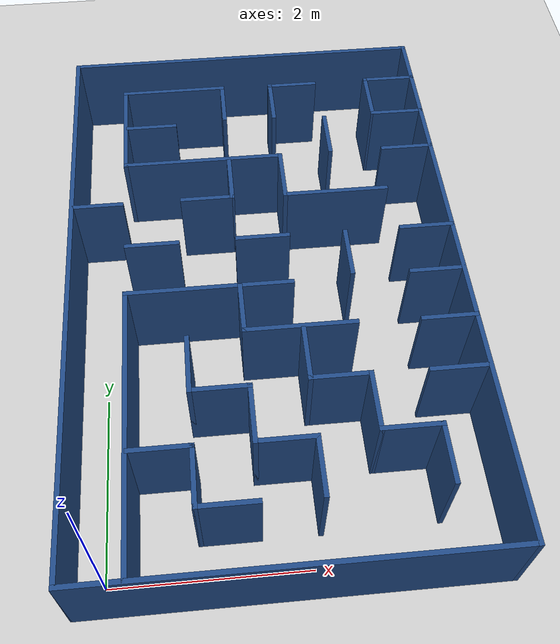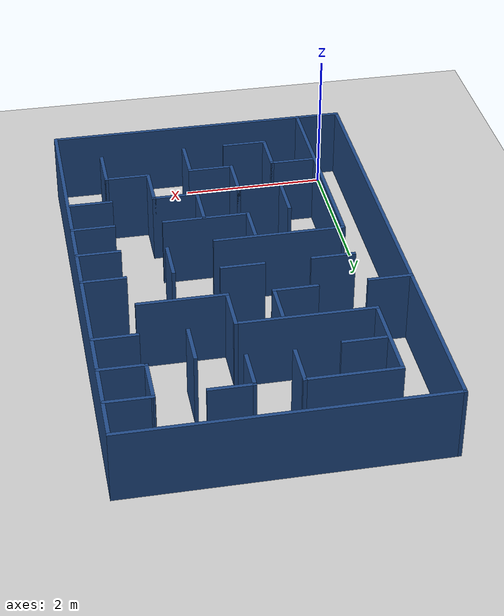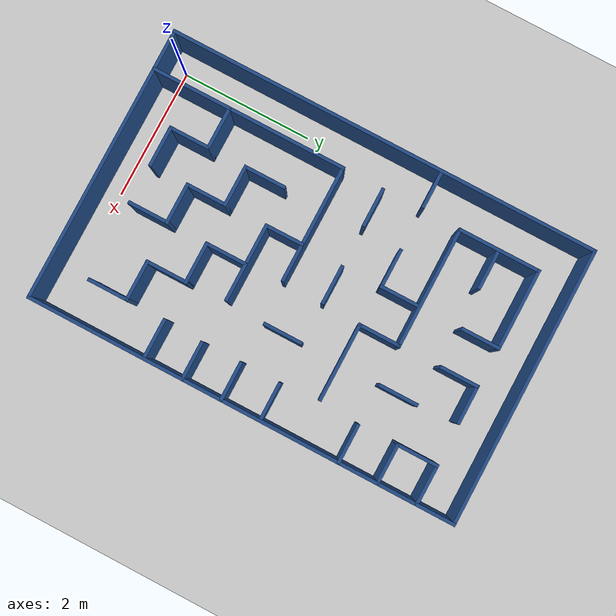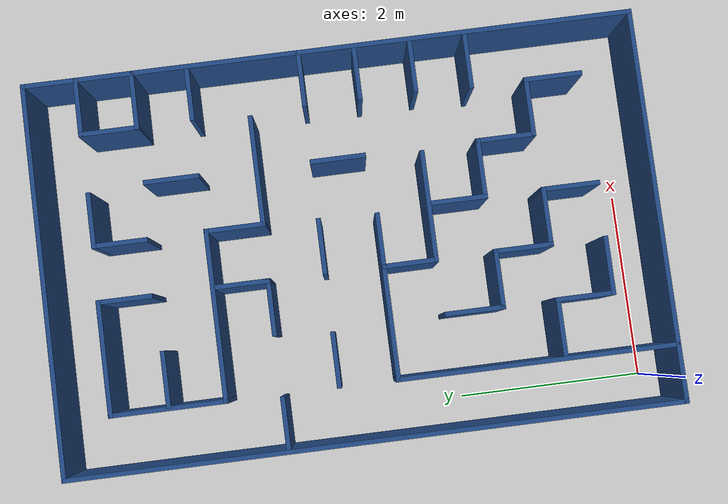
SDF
<sdf version="1.7">
 <world name="default">
  <light name="sun" type="directional">
   <pose>0 0 10 0 -0 0</pose>
   <diffuse>0.8 0.8 0.8 1</diffuse>
   <specular>0.2 0.2 0.2 1</specular>
   <attenuation>
    <range>1000</range>
    <constant>0.9</constant>
    <linear>0.01</linear>
    <quadratic>0.001</quadratic>
   </attenuation>
   <direction>-0.5 0.1 -0.9</direction>
   <spot><inner_angle>0</inner_angle><outer_angle>0</outer_angle><falloff>0</falloff></spot>
  </light>
  <model name="ground_plane">
   <static>1</static>
   <link name="link">
    <collision name="collision">
     <geometry><plane><normal>0 0 1</normal><size>100 100</size></plane></geometry>
     <surface>
      <contact><collide_bitmask>65535</collide_bitmask></contact>
      <friction><ode><mu>100</mu><mu2>50</mu2></ode></friction>
     </surface>
    </collision>
    <visual name="visual">
     <cast_shadows>0</cast_shadows>
     <geometry><plane><normal>0 0 1</normal><size>100 100</size></plane></geometry>
     <material>
      <script><uri>file://media/materials/scripts/gazebo.material</uri><name>Gazebo/Grey</name></script>
     </material>
    </visual>
   </link>
  </model>
  <gravity>0 0 -9.8</gravity>
  <magnetic_field>6e-06 2.3e-05 -4.2e-05</magnetic_field>
  <atmosphere type="adiabatic"/>
  <physics type="ode">
   <max_step_size>0.001</max_step_size>
   <real_time_factor>1</real_time_factor>
   <real_time_update_rate>1000</real_time_update_rate>
  </physics>
  <scene><ambient>0.4 0.4 0.4 1</ambient><background>0.7 0.7 0.7 1</background><shadows>1</shadows></scene>
  <spherical_coordinates>
   <surface_model>EARTH_WGS84</surface_model>
   <latitude_deg>0</latitude_deg>
   <longitude_deg>0</longitude_deg>
   <elevation>0</elevation>
   <heading_deg>0</heading_deg>
  </spherical_coordinates>
  <model name="labyrinth_60cm">
   <pose>1.79106 3.03131 0 0 -0 0</pose>
   <link name="Wall_0">
    <collision name="Wall_0_Collision">
     <geometry><box><size>6.6 0.05 1</size></box></geometry>
     <pose>0 0 0.5 0 -0 0</pose>
    </collision>
    <visual name="Wall_0_Visual">
     <pose>0 0 0.5 0 -0 0</pose>
     <geometry><box><size>6.6 0.05 1</size></box></geometry>
     <material>
      <script><uri>file://media/materials/scripts/gazebo.material</uri><name>Gazebo/Grey</name></script>
      <ambient>0.12549 0.290196 0.529412 1</ambient>
     </material>
     <meta><layer>0</layer></meta>
    </visual>
    <pose>-2.09536 1e-06 0 0 -0 1.57084</pose>
   </link>
   <link name="Wall_11">
    <collision name="Wall_11_Collision">
     <geometry><box><size>6.6 0.05 1</size></box></geometry>
     <pose>0 0 0.5 0 -0 0</pose>
    </collision>
    <visual name="Wall_11_Visual">
     <pose>0 0 0.5 0 -0 0</pose>
     <geometry><box><size>6.6 0.05 1</size></box></geometry>
     <material>
      <script><uri>file://media/materials/scripts/gazebo.material</uri><name>Gazebo/Grey</name></script>
      <ambient>0.12549 0.290196 0.529412 1</ambient>
     </material>
     <meta><layer>0</layer></meta>
    </visual>
    <pose>2.0955 -1e-06 0 0 -0 -1.5708</pose>
   </link>
   <link name="Wall_13">
    <collision name="Wall_13_Collision">
     <geometry><box><size>3 0.05 1</size></box></geometry>
     <pose>0 0 0.5 0 -0 0</pose>
    </collision>
    <visual name="Wall_13_Visual">
     <pose>0 0 0.5 0 -0 0</pose>
     <geometry><box><size>3 0.05 1</size></box></geometry>
     <material>
      <script><uri>file://media/materials/scripts/gazebo.material</uri><name>Gazebo/Grey</name></script>
      <ambient>0.12549 0.290196 0.529412 1</ambient>
     </material>
     <meta><layer>0</layer></meta>
    </visual>
    <pose>-1.4955 -1.788 0 0 -0 1.5708</pose>
   </link>
   <link name="Wall_15">
    <collision name="Wall_15_Collision">
     <geometry><box><size>1.8 0.05 1</size></box></geometry>
     <pose>0 0 0.5 0 -0 0</pose>
    </collision>
    <visual name="Wall_15_Visual">
     <pose>0 0 0.5 0 -0 0</pose>
     <geometry><box><size>1.8 0.05 1</size></box></geometry>
     <material>
      <script><uri>file://media/materials/scripts/gazebo.material</uri><name>Gazebo/Grey</name></script>
      <ambient>0.12549 0.290196 0.529412 1</ambient>
     </material>
     <meta><layer>0</layer></meta>
    </visual>
    <pose>-0.6205 -0.313001 0 0 -0 0</pose>
   </link>
   <link name="Wall_17">
    <collision name="Wall_17_Collision">
     <geometry><box><size>0.6 0.05 1</size></box></geometry>
     <pose>0 0 0.5 0 -0 0</pose>
    </collision>
    <visual name="Wall_17_Visual">
     <pose>0 0 0.5 0 -0 0</pose>
     <geometry><box><size>0.6 0.05 1</size></box></geometry>
     <material>
      <script><uri>file://media/materials/scripts/gazebo.material</uri><name>Gazebo/Grey</name></script>
      <ambient>0.12549 0.290196 0.529412 1</ambient>
     </material>
     <meta><layer>0</layer></meta>
    </visual>
    <pose>-0.296 -0.594831 0 0 -0 -1.56534</pose>
   </link>
   <link name="Wall_19">
    <collision name="Wall_19_Collision">
     <geometry><box><size>1.2 0.05 1</size></box></geometry>
     <pose>0 0 0.5 0 -0 0</pose>
    </collision>
    <visual name="Wall_19_Visual">
     <pose>0 0 0.5 0 -0 0</pose>
     <geometry><box><size>1.2 0.05 1</size></box></geometry>
     <material>
      <script><uri>file://media/materials/scripts/gazebo.material</uri><name>Gazebo/Grey</name></script>
      <ambient>0.12549 0.290196 0.529412 1</ambient>
     </material>
     <meta><layer>0</layer></meta>
    </visual>
    <pose>0.2805 -0.870001 0 0 -0 0</pose>
   </link>
   <link name="Wall_2">
    <collision name="Wall_2_Collision">
     <geometry><box><size>4.241 0.05 1</size></box></geometry>
     <pose>0 0 0.5 0 -0 0</pose>
    </collision>
    <visual name="Wall_2_Visual">
     <pose>0 0 0.5 0 -0 0</pose>
     <geometry><box><size>4.241 0.05 1</size></box></geometry>
     <material>
      <script><uri>file://media/materials/scripts/gazebo.material</uri><name>Gazebo/Grey</name></script>
      <ambient>0.12549 0.290196 0.529412 1</ambient>
     </material>
     <meta><layer>0</layer></meta>
    </visual>
    <pose>0 3.275 0 0 -0 0</pose>
   </link>
   <link name="Wall_21">
    <collision name="Wall_21_Collision">
     <geometry><box><size>0.651929 0.05 1</size></box></geometry>
     <pose>0 0 0.5 0 -0 0</pose>
    </collision>
    <visual name="Wall_21_Visual">
     <pose>0 0 0.5 0 -0 0</pose>
     <geometry><box><size>0.651929 0.05 1</size></box></geometry>
     <material>
      <script><uri>file://media/materials/scripts/gazebo.material</uri><name>Gazebo/Grey</name></script>
      <ambient>0.12549 0.290196 0.529412 1</ambient>
     </material>
     <meta><layer>0</layer></meta>
    </visual>
    <pose>0.3075 -1.1745 0 0 -0 -1.5708</pose>
   </link>
   <link name="Wall_22">
    <collision name="Wall_22_Collision">
     <geometry><box><size>0.65 0.05 1</size></box></geometry>
     <pose>0 0 0.5 0 -0 0</pose>
    </collision>
    <visual name="Wall_22_Visual">
     <pose>0 0 0.5 0 -0 0</pose>
     <geometry><box><size>0.65 0.05 1</size></box></geometry>
     <material>
      <script><uri>file://media/materials/scripts/gazebo.material</uri><name>Gazebo/Grey</name></script>
      <ambient>0.12549 0.290196 0.529412 1</ambient>
     </material>
     <meta><layer>0</layer></meta>
    </visual>
    <pose>0.6075 -1.475 0 0 -0 0</pose>
   </link>
   <link name="Wall_23">
    <collision name="Wall_23_Collision">
     <geometry><box><size>0.65 0.05 1</size></box></geometry>
     <pose>0 0 0.5 0 -0 0</pose>
    </collision>
    <visual name="Wall_23_Visual">
     <pose>0 0 0.5 0 -0 0</pose>
     <geometry><box><size>0.65 0.05 1</size></box></geometry>
     <material>
      <script><uri>file://media/materials/scripts/gazebo.material</uri><name>Gazebo/Grey</name></script>
      <ambient>0.12549 0.290196 0.529412 1</ambient>
     </material>
     <meta><layer>0</layer></meta>
    </visual>
    <pose>0.9075 -1.775 0 0 -0 -1.5708</pose>
   </link>
   <link name="Wall_24">
    <collision name="Wall_24_Collision">
     <geometry><box><size>0.64 0.05 1</size></box></geometry>
     <pose>0 0 0.5 0 -0 0</pose>
    </collision>
    <visual name="Wall_24_Visual">
     <pose>0 0 0.5 0 -0 0</pose>
     <geometry><box><size>0.64 0.05 1</size></box></geometry>
     <material>
      <script><uri>file://media/materials/scripts/gazebo.material</uri><name>Gazebo/Grey</name></script>
      <ambient>0.12549 0.290196 0.529412 1</ambient>
     </material>
     <meta><layer>0</layer></meta>
    </visual>
    <pose>1.2025 -2.075 0 0 -0 0</pose>
   </link>
   <link name="Wall_25">
    <collision name="Wall_25_Collision">
     <geometry><box><size>0.63 0.05 1</size></box></geometry>
     <pose>0 0 0.5 0 -0 0</pose>
    </collision>
    <visual name="Wall_25_Visual">
     <pose>0 0 0.5 0 -0 0</pose>
     <geometry><box><size>0.63 0.05 1</size></box></geometry>
     <material>
      <script><uri>file://media/materials/scripts/gazebo.material</uri><name>Gazebo/Grey</name></script>
      <ambient>0.12549 0.290196 0.529412 1</ambient>
     </material>
     <meta><layer>0</layer></meta>
    </visual>
    <pose>1.4975 -2.365 0 0 -0 -1.5708</pose>
   </link>
   <link name="Wall_28">
    <collision name="Wall_28_Collision">
     <geometry><box><size>0.645 0.05 1</size></box></geometry>
     <pose>0 0 0.5 0 -0 0</pose>
    </collision>
    <visual name="Wall_28_Visual">
     <pose>0 0 0.5 0 -0 0</pose>
     <geometry><box><size>0.645 0.05 1</size></box></geometry>
     <material>
      <script><uri>file://media/materials/scripts/gazebo.material</uri><name>Gazebo/Grey</name></script>
      <ambient>0.12549 0.290196 0.529412 1</ambient>
     </material>
     <meta><layer>0</layer></meta>
    </visual>
    <pose>-0.878499 -1.2085 0 0 -0 -1.5708</pose>
   </link>
   <link name="Wall_29">
    <collision name="Wall_29_Collision">
     <geometry><box><size>0.642777 0.05 1</size></box></geometry>
     <pose>0 0 0.5 0 -0 0</pose>
    </collision>
    <visual name="Wall_29_Visual">
     <pose>0 0 0.5 0 -0 0</pose>
     <geometry><box><size>0.642777 0.05 1</size></box></geometry>
     <material>
      <script><uri>file://media/materials/scripts/gazebo.material</uri><name>Gazebo/Grey</name></script>
      <ambient>0.12549 0.290196 0.529412 1</ambient>
     </material>
     <meta><layer>0</layer></meta>
    </visual>
    <pose>-0.582 -1.506 0 0 -0 0</pose>
   </link>
   <link name="Wall_30">
    <collision name="Wall_30_Collision">
     <geometry><box><size>0.64 0.05 1</size></box></geometry>
     <pose>0 0 0.5 0 -0 0</pose>
    </collision>
    <visual name="Wall_30_Visual">
     <pose>0 0 0.5 0 -0 0</pose>
     <geometry><box><size>0.64 0.05 1</size></box></geometry>
     <material>
      <script><uri>file://media/materials/scripts/gazebo.material</uri><name>Gazebo/Grey</name></script>
      <ambient>0.12549 0.290196 0.529412 1</ambient>
     </material>
     <meta><layer>0</layer></meta>
    </visual>
    <pose>-0.2855 -1.801 0 0 -0 -1.5708</pose>
   </link>
   <link name="Wall_31">
    <collision name="Wall_31_Collision">
     <geometry><box><size>0.64 0.05 1</size></box></geometry>
     <pose>0 0 0.5 0 -0 0</pose>
    </collision>
    <visual name="Wall_31_Visual">
     <pose>0 0 0.5 0 -0 0</pose>
     <geometry><box><size>0.64 0.05 1</size></box></geometry>
     <material>
      <script><uri>file://media/materials/scripts/gazebo.material</uri><name>Gazebo/Grey</name></script>
      <ambient>0.12549 0.290196 0.529412 1</ambient>
     </material>
     <meta><layer>0</layer></meta>
    </visual>
    <pose>0.0095 -2.096 0 0 -0 0</pose>
   </link>
   <link name="Wall_32">
    <collision name="Wall_32_Collision">
     <geometry><box><size>0.63 0.05 1</size></box></geometry>
     <pose>0 0 0.5 0 -0 0</pose>
    </collision>
    <visual name="Wall_32_Visual">
     <pose>0 0 0.5 0 -0 0</pose>
     <geometry><box><size>0.63 0.05 1</size></box></geometry>
     <material>
      <script><uri>file://media/materials/scripts/gazebo.material</uri><name>Gazebo/Grey</name></script>
      <ambient>0.12549 0.290196 0.529412 1</ambient>
     </material>
     <meta><layer>0</layer></meta>
    </visual>
    <pose>0.3045 -2.386 0 0 -0 -1.5708</pose>
   </link>
   <link name="Wall_34">
    <collision name="Wall_34_Collision">
     <geometry><box><size>0.65 0.05 1</size></box></geometry>
     <pose>0 0 0.5 0 -0 0</pose>
    </collision>
    <visual name="Wall_34_Visual">
     <pose>0 0 0.5 0 -0 0</pose>
     <geometry><box><size>0.65 0.05 1</size></box></geometry>
     <material>
      <script><uri>file://media/materials/scripts/gazebo.material</uri><name>Gazebo/Grey</name></script>
      <ambient>0.12549 0.290196 0.529412 1</ambient>
     </material>
     <meta><layer>0</layer></meta>
    </visual>
    <pose>-1.1745 -2.087 0 0 -0 0</pose>
   </link>
   <link name="Wall_35">
    <collision name="Wall_35_Collision">
     <geometry><box><size>0.64 0.05 1</size></box></geometry>
     <pose>0 0 0.5 0 -0 0</pose>
    </collision>
    <visual name="Wall_35_Visual">
     <pose>0 0 0.5 0 -0 0</pose>
     <geometry><box><size>0.64 0.05 1</size></box></geometry>
     <material>
      <script><uri>file://media/materials/scripts/gazebo.material</uri><name>Gazebo/Grey</name></script>
      <ambient>0.12549 0.290196 0.529412 1</ambient>
     </material>
     <meta><layer>0</layer></meta>
    </visual>
    <pose>-0.8745 -2.382 0 0 -0 -1.5708</pose>
   </link>
   <link name="Wall_36">
    <collision name="Wall_36_Collision">
     <geometry><box><size>0.63 0.05 1</size></box></geometry>
     <pose>0 0 0.5 0 -0 0</pose>
    </collision>
    <visual name="Wall_36_Visual">
     <pose>0 0 0.5 0 -0 0</pose>
     <geometry><box><size>0.63 0.05 1</size></box></geometry>
     <material>
      <script><uri>file://media/materials/scripts/gazebo.material</uri><name>Gazebo/Grey</name></script>
      <ambient>0.12549 0.290196 0.529412 1</ambient>
     </material>
     <meta><layer>0</layer></meta>
    </visual>
    <pose>-0.5845 -2.677 0 0 -0 0</pose>
   </link>
   <link name="Wall_38">
    <collision name="Wall_38_Collision">
     <geometry><box><size>0.6 0.05 1</size></box></geometry>
     <pose>0 0 0.5 0 -0 0</pose>
    </collision>
    <visual name="Wall_38_Visual">
     <pose>0 0 0.5 0 -0 0</pose>
     <geometry><box><size>0.6 0.05 1</size></box></geometry>
     <material>
      <script><uri>file://media/materials/scripts/gazebo.material</uri><name>Gazebo/Grey</name></script>
      <ambient>0.12549 0.290196 0.529412 1</ambient>
     </material>
     <meta><layer>0</layer></meta>
    </visual>
    <pose>1.7795 -1.487 0 0 -0 0</pose>
   </link>
   <link name="Wall_4">
    <collision name="Wall_4_Collision">
     <geometry><box><size>4.2 0.05 1</size></box></geometry>
     <pose>0 0 0.5 0 -0 0</pose>
    </collision>
    <visual name="Wall_4_Visual">
     <pose>0 0 0.5 0 -0 0</pose>
     <geometry><box><size>4.2 0.05 1</size></box></geometry>
     <material>
      <script><uri>file://media/materials/scripts/gazebo.material</uri><name>Gazebo/Grey</name></script>
      <ambient>0.12549 0.290196 0.529412 1</ambient>
     </material>
     <meta><layer>0</layer></meta>
    </visual>
    <pose>-0.020222 -3.275 0 0 -0 0</pose>
   </link>
   <link name="Wall_40">
    <collision name="Wall_40_Collision">
     <geometry><box><size>0.6 0.05 1</size></box></geometry>
     <pose>0 0 0.5 0 -0 0</pose>
    </collision>
    <visual name="Wall_40_Visual">
     <pose>0 0 0.5 0 -0 0</pose>
     <geometry><box><size>0.6 0.05 1</size></box></geometry>
     <material>
      <script><uri>file://media/materials/scripts/gazebo.material</uri><name>Gazebo/Grey</name></script>
      <ambient>0.12549 0.290196 0.529412 1</ambient>
     </material>
     <meta><layer>0</layer></meta>
    </visual>
    <pose>1.81467 -0.890897 0 0 -0 0</pose>
   </link>
   <link name="Wall_42">
    <collision name="Wall_42_Collision">
     <geometry><box><size>0.6 0.05 1</size></box></geometry>
     <pose>0 0 0.5 0 -0 0</pose>
    </collision>
    <visual name="Wall_42_Visual">
     <pose>0 0 0.5 0 -0 0</pose>
     <geometry><box><size>0.6 0.05 1</size></box></geometry>
     <material>
      <script><uri>file://media/materials/scripts/gazebo.material</uri><name>Gazebo/Grey</name></script>
      <ambient>0.12549 0.290196 0.529412 1</ambient>
     </material>
     <meta><layer>0</layer></meta>
    </visual>
    <pose>1.80809 -0.289897 0 0 -0 0</pose>
   </link>
   <link name="Wall_44">
    <collision name="Wall_44_Collision">
     <geometry><box><size>0.6 0.05 1</size></box></geometry>
     <pose>0 0 0.5 0 -0 0</pose>
    </collision>
    <visual name="Wall_44_Visual">
     <pose>0 0 0.5 0 -0 0</pose>
     <geometry><box><size>0.6 0.05 1</size></box></geometry>
     <material>
      <script><uri>file://media/materials/scripts/gazebo.material</uri><name>Gazebo/Grey</name></script>
      <ambient>0.12549 0.290196 0.529412 1</ambient>
     </material>
     <meta><layer>0</layer></meta>
    </visual>
    <pose>1.80814 0.308896 0 0 -0 0</pose>
   </link>
   <link name="Wall_46">
    <collision name="Wall_46_Collision">
     <geometry><box><size>0.6 0.05 1</size></box></geometry>
     <pose>0 0 0.5 0 -0 0</pose>
    </collision>
    <visual name="Wall_46_Visual">
     <pose>0 0 0.5 0 -0 0</pose>
     <geometry><box><size>0.6 0.05 1</size></box></geometry>
     <material>
      <script><uri>file://media/materials/scripts/gazebo.material</uri><name>Gazebo/Grey</name></script>
      <ambient>0.12549 0.290196 0.529412 1</ambient>
     </material>
     <meta><layer>0</layer></meta>
    </visual>
    <pose>0.9055 0.026999 0 0 -0 1.5708</pose>
   </link>
   <link name="Wall_48">
    <collision name="Wall_48_Collision">
     <geometry><box><size>0.6 0.05 1</size></box></geometry>
     <pose>0 0 0.5 0 -0 0</pose>
    </collision>
    <visual name="Wall_48_Visual">
     <pose>0 0 0.5 0 -0 0</pose>
     <geometry><box><size>0.6 0.05 1</size></box></geometry>
     <material>
      <script><uri>file://media/materials/scripts/gazebo.material</uri><name>Gazebo/Grey</name></script>
      <ambient>0.12549 0.290196 0.529412 1</ambient>
     </material>
     <meta><layer>0</layer></meta>
    </visual>
    <pose>-1.2075 0.311999 0 0 -0 0</pose>
   </link>
   <link name="Wall_50">
    <collision name="Wall_50_Collision">
     <geometry><box><size>0.6 0.05 1</size></box></geometry>
     <pose>0 0 0.5 0 -0 0</pose>
    </collision>
    <visual name="Wall_50_Visual">
     <pose>0 0 0.5 0 -0 0</pose>
     <geometry><box><size>0.6 0.05 1</size></box></geometry>
     <material>
      <script><uri>file://media/materials/scripts/gazebo.material</uri><name>Gazebo/Grey</name></script>
      <ambient>0.12549 0.290196 0.529412 1</ambient>
     </material>
     <meta><layer>0</layer></meta>
    </visual>
    <pose>-0.001655 0.313999 0 0 -0 0</pose>
   </link>
   <link name="Wall_52">
    <collision name="Wall_52_Collision">
     <geometry><box><size>0.6 0.05 1</size></box></geometry>
     <pose>0 0 0.5 0 -0 0</pose>
    </collision>
    <visual name="Wall_52_Visual">
     <pose>0 0 0.5 0 -0 0</pose>
     <geometry><box><size>0.6 0.05 1</size></box></geometry>
     <material>
      <script><uri>file://media/materials/scripts/gazebo.material</uri><name>Gazebo/Grey</name></script>
      <ambient>0.12549 0.290196 0.529412 1</ambient>
     </material>
     <meta><layer>0</layer></meta>
    </visual>
    <pose>-1.8175 0.915999 0 0 -0 0</pose>
   </link>
   <link name="Wall_54">
    <collision name="Wall_54_Collision">
     <geometry><box><size>1.19662 0.05 1</size></box></geometry>
     <pose>0 0 0.5 0 -0 0</pose>
    </collision>
    <visual name="Wall_54_Visual">
     <pose>0 0 0.5 0 -0 0</pose>
     <geometry><box><size>1.19662 0.05 1</size></box></geometry>
     <material>
      <script><uri>file://media/materials/scripts/gazebo.material</uri><name>Gazebo/Grey</name></script>
      <ambient>0.12549 0.290196 0.529412 1</ambient>
     </material>
     <meta><layer>0</layer></meta>
    </visual>
    <pose>0.883 0.899999 0 0 -0 -3.14159</pose>
   </link>
   <link name="Wall_56">
    <collision name="Wall_56_Collision">
     <geometry><box><size>0.658113 0.05 1</size></box></geometry>
     <pose>0 0 0.5 0 -0 0</pose>
    </collision>
    <visual name="Wall_56_Visual">
     <pose>0 0 0.5 0 -0 0</pose>
     <geometry><box><size>0.658113 0.05 1</size></box></geometry>
     <material>
      <script><uri>file://media/materials/scripts/gazebo.material</uri><name>Gazebo/Grey</name></script>
      <ambient>0.12549 0.290196 0.529412 1</ambient>
     </material>
     <meta><layer>0</layer></meta>
    </visual>
    <pose>0.3095 1.204 0 0 -0 1.5708</pose>
   </link>
   <link name="Wall_58">
    <collision name="Wall_58_Collision">
     <geometry><box><size>1.85 0.05 1</size></box></geometry>
     <pose>0 0 0.5 0 -0 0</pose>
    </collision>
    <visual name="Wall_58_Visual">
     <pose>0 0 0.5 0 -0 0</pose>
     <geometry><box><size>1.85 0.05 1</size></box></geometry>
     <material>
      <script><uri>file://media/materials/scripts/gazebo.material</uri><name>Gazebo/Grey</name></script>
      <ambient>0.12549 0.290196 0.529412 1</ambient>
     </material>
     <meta><layer>0</layer></meta>
    </visual>
    <pose>-0.5905 1.508 0 0 -0 3.14159</pose>
   </link>
   <link name="Wall_60">
    <collision name="Wall_60_Collision">
     <geometry><box><size>0.610168 0.05 1</size></box></geometry>
     <pose>0 0 0.5 0 -0 0</pose>
    </collision>
    <visual name="Wall_60_Visual">
     <pose>0 0 0.5 0 -0 0</pose>
     <geometry><box><size>0.610168 0.05 1</size></box></geometry>
     <material>
      <script><uri>file://media/materials/scripts/gazebo.material</uri><name>Gazebo/Grey</name></script>
      <ambient>0.12549 0.290196 0.529412 1</ambient>
     </material>
     <meta><layer>0</layer></meta>
    </visual>
    <pose>-0.573089 0.919958 0 0 -0 0.000222</pose>
   </link>
   <link name="Wall_62">
    <collision name="Wall_62_Collision">
     <geometry><box><size>0.6 0.05 1</size></box></geometry>
     <pose>0 0 0.5 0 -0 0</pose>
    </collision>
    <visual name="Wall_62_Visual">
     <pose>0 0 0.5 0 -0 0</pose>
     <geometry><box><size>0.6 0.05 1</size></box></geometry>
     <material>
      <script><uri>file://media/materials/scripts/gazebo.material</uri><name>Gazebo/Grey</name></script>
      <ambient>0.12549 0.290196 0.529412 1</ambient>
     </material>
     <meta><layer>0</layer></meta>
    </visual>
    <pose>-0.293004 1.19502 0 0 -0 1.5708</pose>
   </link>
   <link name="Wall_64">
    <collision name="Wall_64_Collision">
     <geometry><box><size>1.264 0.05 1</size></box></geometry>
     <pose>0 0 0.5 0 -0 0</pose>
    </collision>
    <visual name="Wall_64_Visual">
     <pose>0 0 0.5 0 -0 0</pose>
     <geometry><box><size>1.264 0.05 1</size></box></geometry>
     <material>
      <script><uri>file://media/materials/scripts/gazebo.material</uri><name>Gazebo/Grey</name></script>
      <ambient>0.12549 0.290196 0.529412 1</ambient>
     </material>
     <meta><layer>0</layer></meta>
    </visual>
    <pose>-1.4905 2.115 0 0 -0 1.5708</pose>
   </link>
   <link name="Wall_65">
    <collision name="Wall_65_Collision">
     <geometry><box><size>1.2433 0.05 1</size></box></geometry>
     <pose>0 0 0.5 0 -0 0</pose>
    </collision>
    <visual name="Wall_65_Visual">
     <pose>0 0 0.5 0 -0 0</pose>
     <geometry><box><size>1.2433 0.05 1</size></box></geometry>
     <material>
      <script><uri>file://media/materials/scripts/gazebo.material</uri><name>Gazebo/Grey</name></script>
      <ambient>0.12549 0.290196 0.529412 1</ambient>
     </material>
     <meta><layer>0</layer></meta>
    </visual>
    <pose>-0.894 2.722 0 0 -0 0</pose>
   </link>
   <link name="Wall_66">
    <collision name="Wall_66_Collision">
     <geometry><box><size>0.6 0.05 1</size></box></geometry>
     <pose>0 0 0.5 0 -0 0</pose>
    </collision>
    <visual name="Wall_66_Visual">
     <pose>0 0 0.5 0 -0 0</pose>
     <geometry><box><size>0.6 0.05 1</size></box></geometry>
     <material>
      <script><uri>file://media/materials/scripts/gazebo.material</uri><name>Gazebo/Grey</name></script>
      <ambient>0.12549 0.290196 0.529412 1</ambient>
     </material>
     <meta><layer>0</layer></meta>
    </visual>
    <pose>-0.2975 2.447 0 0 -0 -1.5708</pose>
   </link>
   <link name="Wall_68">
    <collision name="Wall_68_Collision">
     <geometry><box><size>0.6 0.05 1</size></box></geometry>
     <pose>0 0 0.5 0 -0 0</pose>
    </collision>
    <visual name="Wall_68_Visual">
     <pose>0 0 0.5 0 -0 0</pose>
     <geometry><box><size>0.6 0.05 1</size></box></geometry>
     <material>
      <script><uri>file://media/materials/scripts/gazebo.material</uri><name>Gazebo/Grey</name></script>
      <ambient>0.12549 0.290196 0.529412 1</ambient>
     </material>
     <meta><layer>0</layer></meta>
    </visual>
    <pose>-1.1855 2.109 0 0 -0 3.14159</pose>
   </link>
   <link name="Wall_70">
    <collision name="Wall_70_Collision">
     <geometry><box><size>0.6 0.05 1</size></box></geometry>
     <pose>0 0 0.5 0 -0 0</pose>
    </collision>
    <visual name="Wall_70_Visual">
     <pose>0 0 0.5 0 -0 0</pose>
     <geometry><box><size>0.6 0.05 1</size></box></geometry>
     <material>
      <script><uri>file://media/materials/scripts/gazebo.material</uri><name>Gazebo/Grey</name></script>
      <ambient>0.12549 0.290196 0.529412 1</ambient>
     </material>
     <meta><layer>0</layer></meta>
    </visual>
    <pose>1.8087 1.51487 0 0 -0 0</pose>
   </link>
   <link name="Wall_72">
    <collision name="Wall_72_Collision">
     <geometry><box><size>0.6 0.05 1</size></box></geometry>
     <pose>0 0 0.5 0 -0 0</pose>
    </collision>
    <visual name="Wall_72_Visual">
     <pose>0 0 0.5 0 -0 0</pose>
     <geometry><box><size>0.6 0.05 1</size></box></geometry>
     <material>
      <script><uri>file://media/materials/scripts/gazebo.material</uri><name>Gazebo/Grey</name></script>
      <ambient>0.12549 0.290196 0.529412 1</ambient>
     </material>
     <meta><layer>0</layer></meta>
    </visual>
    <pose>0.908191 1.81138 0 0 -0 1.5708</pose>
   </link>
   <link name="Wall_74">
    <collision name="Wall_74_Collision">
     <geometry><box><size>0.597545 0.05 1</size></box></geometry>
     <pose>0 0 0.5 0 -0 0</pose>
    </collision>
    <visual name="Wall_74_Visual">
     <pose>0 0 0.5 0 -0 0</pose>
     <geometry><box><size>0.597545 0.05 1</size></box></geometry>
     <material>
      <script><uri>file://media/materials/scripts/gazebo.material</uri><name>Gazebo/Grey</name></script>
      <ambient>0.12549 0.290196 0.529412 1</ambient>
     </material>
     <meta><layer>0</layer></meta>
    </visual>
    <pose>0.3005 2.43023 0 0 -0 1.5708</pose>
   </link>
   <link name="Wall_76">
    <collision name="Wall_76_Collision">
     <geometry><box><size>0.600181 0.05 1</size></box></geometry>
     <pose>0 0 0.5 0 -0 0</pose>
    </collision>
    <visual name="Wall_76_Visual">
     <pose>0 0 0.5 0 -0 0</pose>
     <geometry><box><size>0.600181 0.05 1</size></box></geometry>
     <material>
      <script><uri>file://media/materials/scripts/gazebo.material</uri><name>Gazebo/Grey</name></script>
      <ambient>0.12549 0.290196 0.529412 1</ambient>
     </material>
     <meta><layer>0</layer></meta>
    </visual>
    <pose>0.5755 2.704 0 0 -0 0</pose>
   </link>
   <link name="Wall_78">
    <collision name="Wall_78_Collision">
     <geometry><box><size>0.626486 0.05 1</size></box></geometry>
     <pose>0 0 0.5 0 -0 0</pose>
    </collision>
    <visual name="Wall_78_Visual">
     <pose>0 0 0.5 0 -0 0</pose>
     <geometry><box><size>0.626486 0.05 1</size></box></geometry>
     <material>
      <script><uri>file://media/materials/scripts/gazebo.material</uri><name>Gazebo/Grey</name></script>
      <ambient>0.12549 0.290196 0.529412 1</ambient>
     </material>
     <meta><layer>0</layer></meta>
    </visual>
    <pose>1.79726 2.10996 0 0 -0 3.13479</pose>
   </link>
   <link name="Wall_81">
    <collision name="Wall_81_Collision">
     <geometry><box><size>0.65 0.05 1</size></box></geometry>
     <pose>0 0 0.5 0 -0 0</pose>
    </collision>
    <visual name="Wall_81_Visual">
     <pose>0 0 0.5 0 -0 0</pose>
     <geometry><box><size>0.65 0.05 1</size></box></geometry>
     <material>
      <script><uri>file://media/materials/scripts/gazebo.material</uri><name>Gazebo/Grey</name></script>
      <ambient>0.12549 0.290196 0.529412 1</ambient>
     </material>
     <meta><layer>0</layer></meta>
    </visual>
    <pose>1.50511 2.41192 0 0 -0 1.5708</pose>
   </link>
   <link name="Wall_82">
    <collision name="Wall_82_Collision">
     <geometry><box><size>0.626486 0.05 1</size></box></geometry>
     <pose>0 0 0.5 0 -0 0</pose>
    </collision>
    <visual name="Wall_82_Visual">
     <pose>0 0 0.5 0 -0 0</pose>
     <geometry><box><size>0.626486 0.05 1</size></box></geometry>
     <material>
      <script><uri>file://media/materials/scripts/gazebo.material</uri><name>Gazebo/Grey</name></script>
      <ambient>0.12549 0.290196 0.529412 1</ambient>
     </material>
     <meta><layer>0</layer></meta>
    </visual>
    <pose>1.79726 2.70996 0 0 -0 -0.006802</pose>
   </link>
   <static>1</static>
  </model>
 </world>
</sdf>
